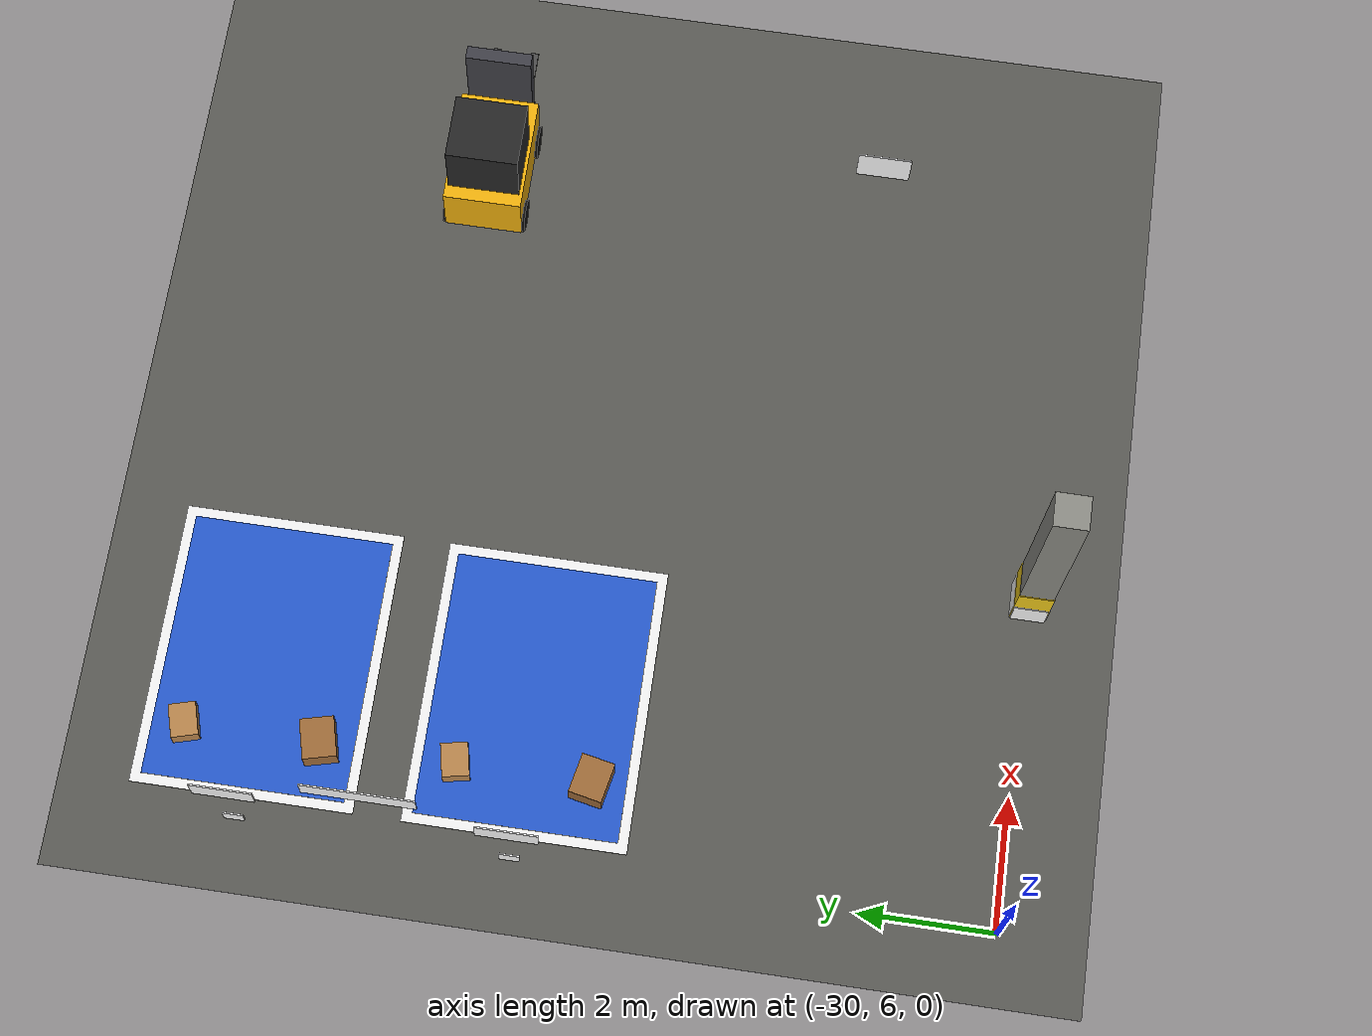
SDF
<sdf version="1.8">
 <world name="warehouse">
  <model name="ground_plane">
   <static>true</static>
   <link name="link">
    <collision name="collision">
     <geometry><plane><normal>0 0 1</normal><size>64 44</size></plane></geometry>
     <surface><friction><ode><mu>0.8</mu><mu2>0.8</mu2></ode></friction></surface>
    </collision>
    <visual name="visual">
     <geometry><plane><normal>0 0 1</normal><size>64 44</size></plane></geometry>
     <material>
      <ambient>0.35 0.35 0.33 1</ambient>
      <diffuse>0.35 0.35 0.33 1</diffuse>
      <specular>0.05 0.05 0.05 1</specular>
     </material>
    </visual>
   </link>
  </model>
  <include>
   <uri>model://pillar</uri>
   <name>pillar_5</name>
   <pose>-25.0000 6.0000 0.0000 0.0000 0.0000 0.0000</pose>
  </include>
  <model name="pillar_5_marker_0">
   <static>true</static>
   <pose>-24.7380 6.0000 0.0000 0.0000 0.0000 0.0000</pose>
   <link name="link">
    <collision name="plate_collision">
     <pose>0 0 0.250 0 0 0</pose>
     <geometry><box><size>0.02 0.50 0.50</size></box></geometry>
    </collision>
    <visual name="plate">
     <pose>0 0 0.250 0 0 0</pose>
     <geometry><box><size>0.02 0.50 0.50</size></box></geometry>
     <material>
      <ambient>1 1 1 1</ambient>
      <diffuse>1 1 1 1</diffuse>
      <specular>0.05 0.05 0.05 1</specular>
      <pbr>
       <metal>
        <albedo_map>model://dock_marker/materials/textures/aruco_4x4_100_26.png</albedo_map>
        <metalness>0.0</metalness>
        <roughness>0.9</roughness>
       </metal>
      </pbr>
     </material>
    </visual>
   </link>
  </model>
  <model name="pillar_5_marker_1">
   <static>true</static>
   <pose>-25.2620 6.0000 0.0000 0.0000 0.0000 3.1416</pose>
   <link name="link">
    <collision name="plate_collision">
     <pose>0 0 0.250 0 0 0</pose>
     <geometry><box><size>0.02 0.50 0.50</size></box></geometry>
    </collision>
    <visual name="plate">
     <pose>0 0 0.250 0 0 0</pose>
     <geometry><box><size>0.02 0.50 0.50</size></box></geometry>
     <material>
      <ambient>1 1 1 1</ambient>
      <diffuse>1 1 1 1</diffuse>
      <specular>0.05 0.05 0.05 1</specular>
      <pbr>
       <metal>
        <albedo_map>model://dock_marker/materials/textures/aruco_4x4_100_27.png</albedo_map>
        <metalness>0.0</metalness>
        <roughness>0.9</roughness>
       </metal>
      </pbr>
     </material>
    </visual>
   </link>
  </model>
  <model name="pillar_5_marker_2">
   <static>true</static>
   <pose>-25.0000 6.2620 0.0000 0.0000 0.0000 1.5708</pose>
   <link name="link">
    <collision name="plate_collision">
     <pose>0 0 0.250 0 0 0</pose>
     <geometry><box><size>0.02 0.50 0.50</size></box></geometry>
    </collision>
    <visual name="plate">
     <pose>0 0 0.250 0 0 0</pose>
     <geometry><box><size>0.02 0.50 0.50</size></box></geometry>
     <material>
      <ambient>1 1 1 1</ambient>
      <diffuse>1 1 1 1</diffuse>
      <specular>0.05 0.05 0.05 1</specular>
      <pbr>
       <metal>
        <albedo_map>model://dock_marker/materials/textures/aruco_4x4_100_28.png</albedo_map>
        <metalness>0.0</metalness>
        <roughness>0.9</roughness>
       </metal>
      </pbr>
     </material>
    </visual>
   </link>
  </model>
  <model name="pillar_5_marker_3">
   <static>true</static>
   <pose>-25.0000 5.7380 0.0000 0.0000 0.0000 -1.5708</pose>
   <link name="link">
    <collision name="plate_collision">
     <pose>0 0 0.250 0 0 0</pose>
     <geometry><box><size>0.02 0.50 0.50</size></box></geometry>
    </collision>
    <visual name="plate">
     <pose>0 0 0.250 0 0 0</pose>
     <geometry><box><size>0.02 0.50 0.50</size></box></geometry>
     <material>
      <ambient>1 1 1 1</ambient>
      <diffuse>1 1 1 1</diffuse>
      <specular>0.05 0.05 0.05 1</specular>
      <pbr>
       <metal>
        <albedo_map>model://dock_marker/materials/textures/aruco_4x4_100_29.png</albedo_map>
        <metalness>0.0</metalness>
        <roughness>0.9</roughness>
       </metal>
      </pbr>
     </material>
    </visual>
   </link>
  </model>
  <include>
   <uri>model://dock_pad_inbound</uri>
   <name>dock_1_pad</name>
   <pose>-27.5000 17.0000 0.0000 0.0000 0.0000 0.0000</pose>
  </include>
  <model name="dock_1_marker">
   <static>true</static>
   <pose>-29.9900 17.0000 0.0000 0.0000 0.0000 0.0000</pose>
   <link name="link">
    <collision name="plate_collision">
     <pose>0 0 0.250 0 0 0</pose>
     <geometry><box><size>0.02 0.30 0.30</size></box></geometry>
    </collision>
    <visual name="plate">
     <pose>0 0 0.250 0 0 0</pose>
     <geometry><box><size>0.02 0.30 0.30</size></box></geometry>
     <material>
      <ambient>1 1 1 1</ambient>
      <diffuse>1 1 1 1</diffuse>
      <specular>0.05 0.05 0.05 1</specular>
      <pbr>
       <metal>
        <albedo_map>model://dock_marker/materials/textures/aruco_4x4_100_0.png</albedo_map>
        <metalness>0.0</metalness>
        <roughness>0.9</roughness>
       </metal>
      </pbr>
     </material>
    </visual>
   </link>
  </model>
  <include>
   <uri>model://box_medium</uri>
   <name>dock_1_box_medium</name>
   <pose>-28.7000 18.0000 0.0000 0.0000 0.0000 0.2814</pose>
  </include>
  <include>
   <uri>model://box_large</uri>
   <name>dock_1_box_large</name>
   <pose>-28.7000 16.0000 0.0000 0.0000 0.0000 0.2558</pose>
  </include>
  <include>
   <uri>model://dock_pad_inbound</uri>
   <name>dock_2_pad</name>
   <pose>-27.5000 13.0000 0.0000 0.0000 0.0000 0.0000</pose>
  </include>
  <model name="dock_2_marker">
   <static>true</static>
   <pose>-29.9900 13.0000 0.0000 0.0000 0.0000 0.0000</pose>
   <link name="link">
    <collision name="plate_collision">
     <pose>0 0 0.250 0 0 0</pose>
     <geometry><box><size>0.02 0.30 0.30</size></box></geometry>
    </collision>
    <visual name="plate">
     <pose>0 0 0.250 0 0 0</pose>
     <geometry><box><size>0.02 0.30 0.30</size></box></geometry>
     <material>
      <ambient>1 1 1 1</ambient>
      <diffuse>1 1 1 1</diffuse>
      <specular>0.05 0.05 0.05 1</specular>
      <pbr>
       <metal>
        <albedo_map>model://dock_marker/materials/textures/aruco_4x4_100_1.png</albedo_map>
        <metalness>0.0</metalness>
        <roughness>0.9</roughness>
       </metal>
      </pbr>
     </material>
    </visual>
   </link>
  </model>
  <include>
   <uri>model://box_medium</uri>
   <name>dock_2_box_medium</name>
   <pose>-28.7000 14.0000 0.0000 0.0000 0.0000 0.2092</pose>
  </include>
  <include>
   <uri>model://box_large</uri>
   <name>dock_2_box_large</name>
   <pose>-28.7000 12.0000 0.0000 0.0000 0.0000 -0.2002</pose>
  </include>
  <model name="sign_dock_1">
   <static>true</static>
   <pose>-29.9880 17.0000 0.0000 0.0000 0.0000 0.0000</pose>
   <link name="link">
    <visual name="plate">
     <pose>0 0 1.600 0 0 0</pose>
     <geometry><box><size>0.02 0.90 0.45</size></box></geometry>
     <material>
      <ambient>1 1 1 1</ambient>
      <diffuse>1 1 1 1</diffuse>
      <specular>0.05 0.05 0.05 1</specular>
      <pbr>
       <metal>
        <albedo_map>model://sign/materials/textures/sign_dock_1.png</albedo_map>
        <metalness>0.0</metalness>
        <roughness>0.9</roughness>
       </metal>
      </pbr>
     </material>
    </visual>
   </link>
  </model>
  <model name="sign_dock_2">
   <static>true</static>
   <pose>-29.9880 13.0000 0.0000 0.0000 0.0000 0.0000</pose>
   <link name="link">
    <visual name="plate">
     <pose>0 0 1.600 0 0 0</pose>
     <geometry><box><size>0.02 0.90 0.45</size></box></geometry>
     <material>
      <ambient>1 1 1 1</ambient>
      <diffuse>1 1 1 1</diffuse>
      <specular>0.05 0.05 0.05 1</specular>
      <pbr>
       <metal>
        <albedo_map>model://sign/materials/textures/sign_dock_2.png</albedo_map>
        <metalness>0.0</metalness>
        <roughness>0.9</roughness>
       </metal>
      </pbr>
     </material>
    </visual>
   </link>
  </model>
  <model name="sign_zone_inbound">
   <static>true</static>
   <pose>-29.9880 15.0000 0.0000 0.0000 0.0000 0.0000</pose>
   <link name="link">
    <visual name="plate">
     <pose>0 0 2.600 0 0 0</pose>
     <geometry><box><size>0.02 1.60 0.40</size></box></geometry>
     <material>
      <ambient>1 1 1 1</ambient>
      <diffuse>1 1 1 1</diffuse>
      <specular>0.05 0.05 0.05 1</specular>
      <pbr>
       <metal>
        <albedo_map>model://sign/materials/textures/sign_zone_inbound.png</albedo_map>
        <metalness>0.0</metalness>
        <roughness>0.9</roughness>
       </metal>
      </pbr>
     </material>
    </visual>
   </link>
  </model>
  <model name="sign_zone_a_west">
   <static>true</static>
   <pose>-19.0120 9.0000 0.0000 0.0000 0.0000 3.1416</pose>
   <link name="link">
    <visual name="plate">
     <pose>0 0 1.700 0 0 0</pose>
     <geometry><box><size>0.02 0.80 0.60</size></box></geometry>
     <material>
      <ambient>1 1 1 1</ambient>
      <diffuse>1 1 1 1</diffuse>
      <specular>0.05 0.05 0.05 1</specular>
      <pbr>
       <metal>
        <albedo_map>model://sign/materials/textures/sign_zone_a.png</albedo_map>
        <metalness>0.0</metalness>
        <roughness>0.9</roughness>
       </metal>
      </pbr>
     </material>
    </visual>
   </link>
  </model>
  <include>
   <uri>model://forklift</uri>
   <name>forklift_main</name>
   <pose>-18.9750 15.0000 0.0000 0.0000 0.0000 0.0000</pose>
   <plugin filename="ignition-gazebo-diff-drive-system" name="ignition::gazebo::systems::DiffDrive">
    <left_joint>wheel_left_joint</left_joint>
    <right_joint>wheel_right_joint</right_joint>
    <wheel_separation>1.1</wheel_separation>
    <wheel_radius>0.25</wheel_radius>
    <topic>/model/forklift_main/cmd_vel</topic>
    <odom_topic>/model/forklift_main/diff_drive/odom</odom_topic>
    <tf_topic>/model/forklift_main/diff_drive/tf</tf_topic>
    <max_linear_velocity>1.5</max_linear_velocity>
    <min_linear_velocity>-1.5</min_linear_velocity>
    <max_linear_acceleration>1.0</max_linear_acceleration>
    <min_linear_acceleration>-1.0</min_linear_acceleration>
   </plugin>
   <plugin filename="ignition-gazebo-pose-publisher-system" name="ignition::gazebo::systems::PosePublisher">
    <publish_model_pose>true</publish_model_pose>
    <publish_nested_model_pose>true</publish_nested_model_pose>
    <publish_link_pose>false</publish_link_pose>
    <publish_collision_pose>false</publish_collision_pose>
    <publish_visual_pose>false</publish_visual_pose>
    <publish_sensor_pose>false</publish_sensor_pose>
    <use_pose_vector_msg>false</use_pose_vector_msg>
    <static_publisher>false</static_publisher>
    <update_frequency>50</update_frequency>
   </plugin>
   <plugin filename="ignition-gazebo-odometry-publisher-system" name="ignition::gazebo::systems::OdometryPublisher">
    <odom_frame>world</odom_frame>
    <robot_base_frame>forklift_main</robot_base_frame>
    <odom_topic>/model/forklift_main/odometry</odom_topic>
    <tf_topic>/model/forklift_main/odometry/tf</tf_topic>
    <odom_publish_frequency>50</odom_publish_frequency>
    <dimensions>2</dimensions>
   </plugin>
   <plugin filename="ignition-gazebo-triggered-publisher-system" name="ignition::gazebo::systems::TriggeredPublisher">
    <input type="ignition.msgs.Pose" topic="/model/forklift_main/pose">
     <match field="position.x" tol="0.25">19.125</match>
    </input>
    <output type="ignition.msgs.Twist" topic="/model/forklift_main/cmd_vel">linear: {x: -1.5}</output>
   </plugin>
   <plugin filename="ignition-gazebo-triggered-publisher-system" name="ignition::gazebo::systems::TriggeredPublisher">
    <input type="ignition.msgs.Pose" topic="/model/forklift_main/pose">
     <match field="position.x" tol="0.25">-19.125</match>
    </input>
    <output type="ignition.msgs.Twist" topic="/model/forklift_main/cmd_vel">linear: {x: 1.5}</output>
   </plugin>
  </include>
 </world>
</sdf>
